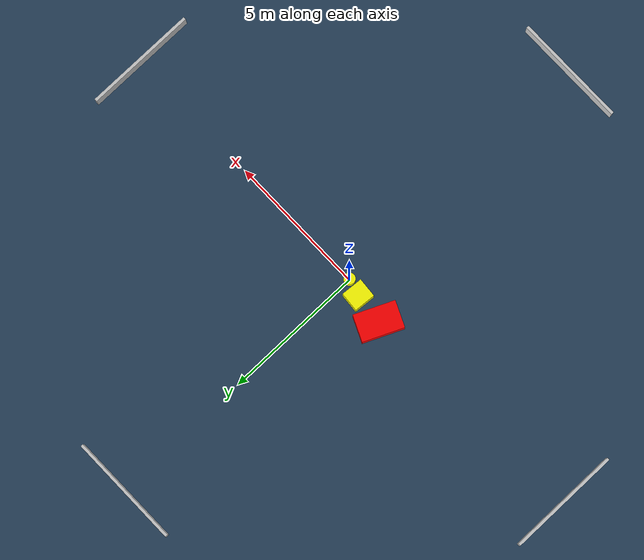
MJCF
<?xml version="1.0" ?>
<mujoco model="generated_environment">
  <option timestep="0.01" integrator="RK4" cone="elliptic"/>
  <default>
    <geom density="1"/>
  </default>
  <asset>
    <texture builtin="gradient" height="3072" name="skybox" rgb1="0.3 0.5 0.7" rgb2="0 0 0" type="skybox" width="512"/>
    <texture builtin="checker" height="300" name="groundplane" rgb1="0.2 0.3 0.4" rgb2="0.1 0.2 0.3" type="2d" width="300"/>
    <material name="groundplane" reflectance="0.2" texrepeat="5 5" texture="groundplane"/>
  </asset>
  <worldbody>
    <light dir="0 0 -1" directional="true" pos="0 0 1.5"/>
    <geom condim="3" friction="0.5 0.005 0.001" material="groundplane" name="floor" pos="0 0 0" size="0 0 0.05" type="plane"/>
    <body name="walls">
      <geom name="wall_1" condim="4" pos="-10.0 0.0 0.3" rgba="0.800000011920929 0.800000011920929 0.800000011920929 1.0" size="0.05 2.0 0.3" type="box"/>
      <geom name="wall_2" condim="4" pos="10.0 0.0 0.3" rgba="0.800000011920929 0.800000011920929 0.800000011920929 1.0" size="0.05 2.0 0.3" type="box"/>
      <geom name="wall_3" condim="4" pos="0.0 -10.0 0.3" rgba="0.800000011920929 0.800000011920929 0.800000011920929 1.0" size="2.0 0.05 0.3" type="box"/>
      <geom name="wall_4" condim="4" pos="0.0 10.0 0.3" rgba="0.800000011920929 0.800000011920929 0.800000011920929 1.0" size="2.0 0.05 0.3" type="box"/>
    </body>
    <body name="robot">
      <joint name="joint_x" type="slide" pos="0 0 0" axis="1 0 0"/>
      <joint name="joint_y" type="slide" pos="0 0 0" axis="0 1 0"/>
      <geom name="robot" type="cylinder" pos="0.0 0.0 0.2" size="0.2 0.2 0.0" mass="5.0" friction="1.0 0.005 0.0001" condim="4" rgba="1.0 1.0 0.0 1.0"/>
    </body>
    <body name="obstacle_1_movable">
      <geom name="obstacle_1_movable" condim="4" pos="-0.5982191862607119 0.17912187936078672 0.3" euler="0 0 265.4781127535219" friction="0.0 0.005 0.001" rgba="1.0 1.0 0.0 1.0" size="0.38048692735901624 0.34105858100105124 0.3" type="box" mass="0.1"/>
      <joint type="free"/>
    </body>
    <body name="obstacle_2_static">
      <geom name="obstacle_2_static" condim="4" pos="-1.6781272451975398 0.28894238292925667 0.3" euler="0 0 65.62654666222133" friction="0.0 0.005 0.001" rgba="1.0 0.0 0.0 1.0" size="0.7364653135500501 0.47416935122017195 0.3" type="box"/>
    </body>
  </worldbody>
  <actuator>
    <motor name="actuator_x" joint="joint_x" gear="1" ctrlrange="-1 1"/>
    <motor name="actuator_y" joint="joint_y" gear="1" ctrlrange="-1 1"/>
  </actuator>
</mujoco>
